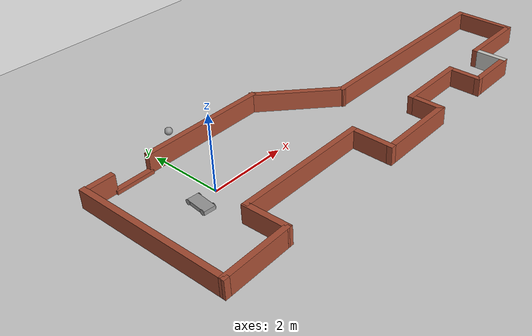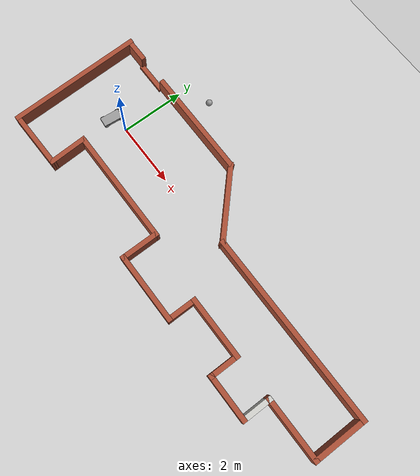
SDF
<sdf version="1.6">
 <world name="default">
  <light name="sun" type="directional">
   <pose>0 0 10 0 -0 0</pose>
   <diffuse>0.8 0.8 0.8 1</diffuse>
   <specular>0.2 0.2 0.2 1</specular>
   <attenuation>
    <range>1000</range>
    <constant>0.9</constant>
    <linear>0.01</linear>
    <quadratic>0.001</quadratic>
   </attenuation>
   <direction>-0.5 0.1 -0.9</direction>
  </light>
  <model name="ground_plane">
   <static>1</static>
   <link name="link">
    <collision name="collision">
     <geometry><plane><normal>0 0 1</normal><size>100 100</size></plane></geometry>
     <surface>
      <contact><collide_bitmask>65535</collide_bitmask></contact>
      <friction><ode><mu>100</mu><mu2>50</mu2></ode></friction>
     </surface>
    </collision>
    <visual name="visual">
     <cast_shadows>0</cast_shadows>
     <geometry><plane><normal>0 0 1</normal><size>100 100</size></plane></geometry>
     <material>
      <script><uri>file://media/materials/scripts/gazebo.material</uri><name>Gazebo/Grey</name></script>
     </material>
    </visual>
   </link>
  </model>
  <gravity>0 0 -9.8</gravity>
  <magnetic_field>6e-06 2.3e-05 -4.2e-05</magnetic_field>
  <atmosphere type="adiabatic"/>
  <physics name="default_physics" default="0" type="ode">
   <max_step_size>0.001</max_step_size>
   <real_time_factor>1</real_time_factor>
   <real_time_update_rate>1000</real_time_update_rate>
  </physics>
  <scene><ambient>0.4 0.4 0.4 1</ambient><background>0.7 0.7 0.7 1</background><shadows>1</shadows></scene>
  <spherical_coordinates>
   <surface_model>EARTH_WGS84</surface_model>
   <latitude_deg>0</latitude_deg>
   <longitude_deg>0</longitude_deg>
   <elevation>0</elevation>
   <heading_deg>0</heading_deg>
  </spherical_coordinates>
  <model name="robot">
   <link name="link_0">
    <inertial>
     <mass>1</mass>
     <inertia>
      <ixx>0.166667</ixx>
      <ixy>0</ixy>
      <ixz>0</ixz>
      <iyy>0.166667</iyy>
      <iyz>0</iyz>
      <izz>0.166667</izz>
     </inertia>
    </inertial>
    <pose>-1e-06 -0.010289 0 0 -0 0</pose>
    <visual name="visual">
     <geometry><box><size>0.3 0.6 0.1</size></box></geometry>
     <material>
      <lighting>1</lighting>
      <script><uri>file://media/materials/scripts/gazebo.material</uri><name>Gazebo/Grey</name></script>
      <shader type="pixel"><normal_map>__default__</normal_map></shader>
      <ambient>0.3 0.3 0.3 1</ambient>
      <diffuse>0.7 0.7 0.7 1</diffuse>
      <specular>0.01 0.01 0.01 1</specular>
      <emissive>0 0 0 1</emissive>
     </material>
    </visual>
    <collision name="collision">
     <geometry><box><size>0.3 0.6 0.1</size></box></geometry>
     <surface>
      <friction>
       <ode><mu>1</mu><mu2>1</mu2><fdir1>0 0 0</fdir1><slip1>0</slip1><slip2>0</slip2></ode>
       <torsional>
        <coefficient>1</coefficient>
        <patch_radius>0</patch_radius>
        <surface_radius>0</surface_radius>
        <use_patch_radius>1</use_patch_radius>
        <ode><slip>0</slip></ode>
       </torsional>
      </friction>
      <bounce><restitution_coefficient>0</restitution_coefficient><threshold>1e+06</threshold></bounce>
      <contact>
       <collide_without_contact>0</collide_without_contact>
       <collide_without_contact_bitmask>1</collide_without_contact_bitmask>
       <collide_bitmask>1</collide_bitmask>
       <ode>
        <soft_cfm>0</soft_cfm>
        <soft_erp>0.2</soft_erp>
        <kp>1e+13</kp>
        <kd>1</kd>
        <max_vel>0.01</max_vel>
        <min_depth>0</min_depth>
       </ode>
       <bullet>
        <split_impulse>1</split_impulse>
        <split_impulse_penetration_threshold>-0.01</split_impulse_penetration_threshold>
        <soft_cfm>0</soft_cfm>
        <soft_erp>0.2</soft_erp>
        <kp>1e+13</kp>
        <kd>1</kd>
       </bullet>
      </contact>
     </surface>
    </collision>
   </link>
   <link name="link_1_clone_0">
    <inertial>
     <mass>1</mass>
     <inertia><ixx>0.145833</ixx><ixy>0</ixy><ixz>0</ixz><iyy>0.145833</iyy><iyz>0</iyz><izz>0.125</izz></inertia>
    </inertial>
    <pose>-0.155011 0.239711 0 1.5707 0 1.5707</pose>
    <visual name="visual">
     <geometry><cylinder><radius>0.07</radius><length>0.01</length></cylinder></geometry>
     <material>
      <lighting>1</lighting>
      <script><uri>file://media/materials/scripts/gazebo.material</uri><name>Gazebo/Grey</name></script>
      <shader type="pixel"><normal_map>__default__</normal_map></shader>
      <ambient>0.3 0.3 0.3 1</ambient>
      <diffuse>0.7 0.7 0.7 1</diffuse>
      <specular>0.01 0.01 0.01 1</specular>
      <emissive>0 0 0 1</emissive>
     </material>
    </visual>
    <collision name="collision">
     <geometry><cylinder><radius>0.07</radius><length>0.01</length></cylinder></geometry>
     <surface>
      <friction>
       <ode><mu>1</mu><mu2>1</mu2><fdir1>0 0 0</fdir1><slip1>0</slip1><slip2>0</slip2></ode>
       <torsional>
        <coefficient>1</coefficient>
        <patch_radius>0</patch_radius>
        <surface_radius>0</surface_radius>
        <use_patch_radius>1</use_patch_radius>
        <ode><slip>0</slip></ode>
       </torsional>
      </friction>
      <bounce><restitution_coefficient>0</restitution_coefficient><threshold>1e+06</threshold></bounce>
      <contact>
       <collide_without_contact>0</collide_without_contact>
       <collide_without_contact_bitmask>1</collide_without_contact_bitmask>
       <collide_bitmask>1</collide_bitmask>
       <ode>
        <soft_cfm>0</soft_cfm>
        <soft_erp>0.2</soft_erp>
        <kp>1e+13</kp>
        <kd>1</kd>
        <max_vel>0.01</max_vel>
        <min_depth>0</min_depth>
       </ode>
       <bullet>
        <split_impulse>1</split_impulse>
        <split_impulse_penetration_threshold>-0.01</split_impulse_penetration_threshold>
        <soft_cfm>0</soft_cfm>
        <soft_erp>0.2</soft_erp>
        <kp>1e+13</kp>
        <kd>1</kd>
       </bullet>
      </contact>
     </surface>
    </collision>
   </link>
   <link name="link_1_clone_0_clone">
    <inertial>
     <mass>1</mass>
     <inertia><ixx>0.145833</ixx><ixy>0</ixy><ixz>0</ixz><iyy>0.145833</iyy><iyz>0</iyz><izz>0.125</izz></inertia>
    </inertial>
    <pose>0.155013 0.251154 0 1.5707 0 1.5707</pose>
    <visual name="visual">
     <geometry><cylinder><radius>0.07</radius><length>0.01</length></cylinder></geometry>
     <material>
      <lighting>1</lighting>
      <script><uri>file://media/materials/scripts/gazebo.material</uri><name>Gazebo/Grey</name></script>
      <shader type="pixel"><normal_map>__default__</normal_map></shader>
      <ambient>0.3 0.3 0.3 1</ambient>
      <diffuse>0.7 0.7 0.7 1</diffuse>
      <specular>0.01 0.01 0.01 1</specular>
      <emissive>0 0 0 1</emissive>
     </material>
    </visual>
    <collision name="collision">
     <geometry><cylinder><radius>0.07</radius><length>0.01</length></cylinder></geometry>
     <surface>
      <friction>
       <ode><mu>1</mu><mu2>1</mu2><fdir1>0 0 0</fdir1><slip1>0</slip1><slip2>0</slip2></ode>
       <torsional>
        <coefficient>1</coefficient>
        <patch_radius>0</patch_radius>
        <surface_radius>0</surface_radius>
        <use_patch_radius>1</use_patch_radius>
        <ode><slip>0</slip></ode>
       </torsional>
      </friction>
      <bounce><restitution_coefficient>0</restitution_coefficient><threshold>1e+06</threshold></bounce>
      <contact>
       <collide_without_contact>0</collide_without_contact>
       <collide_without_contact_bitmask>1</collide_without_contact_bitmask>
       <collide_bitmask>1</collide_bitmask>
       <ode>
        <soft_cfm>0</soft_cfm>
        <soft_erp>0.2</soft_erp>
        <kp>1e+13</kp>
        <kd>1</kd>
        <max_vel>0.01</max_vel>
        <min_depth>0</min_depth>
       </ode>
       <bullet>
        <split_impulse>1</split_impulse>
        <split_impulse_penetration_threshold>-0.01</split_impulse_penetration_threshold>
        <soft_cfm>0</soft_cfm>
        <soft_erp>0.2</soft_erp>
        <kp>1e+13</kp>
        <kd>1</kd>
       </bullet>
      </contact>
     </surface>
    </collision>
   </link>
   <link name="link_1_clone_0_clone_0">
    <inertial>
     <mass>1</mass>
     <inertia><ixx>0.145833</ixx><ixy>0</ixy><ixz>0</ixz><iyy>0.145833</iyy><iyz>0</iyz><izz>0.125</izz></inertia>
    </inertial>
    <pose>0.155013 -0.240288 0 1.5707 0 1.5707</pose>
    <visual name="visual">
     <geometry><cylinder><radius>0.07</radius><length>0.01</length></cylinder></geometry>
     <material>
      <lighting>1</lighting>
      <script><uri>file://media/materials/scripts/gazebo.material</uri><name>Gazebo/Grey</name></script>
      <shader type="pixel"><normal_map>__default__</normal_map></shader>
      <ambient>0.3 0.3 0.3 1</ambient>
      <diffuse>0.7 0.7 0.7 1</diffuse>
      <specular>0.01 0.01 0.01 1</specular>
      <emissive>0 0 0 1</emissive>
     </material>
    </visual>
    <collision name="collision">
     <geometry><cylinder><radius>0.07</radius><length>0.01</length></cylinder></geometry>
     <surface>
      <friction>
       <ode><mu>1</mu><mu2>1</mu2><fdir1>0 0 0</fdir1><slip1>0</slip1><slip2>0</slip2></ode>
       <torsional>
        <coefficient>1</coefficient>
        <patch_radius>0</patch_radius>
        <surface_radius>0</surface_radius>
        <use_patch_radius>1</use_patch_radius>
        <ode><slip>0</slip></ode>
       </torsional>
      </friction>
      <bounce><restitution_coefficient>0</restitution_coefficient><threshold>1e+06</threshold></bounce>
      <contact>
       <collide_without_contact>0</collide_without_contact>
       <collide_without_contact_bitmask>1</collide_without_contact_bitmask>
       <collide_bitmask>1</collide_bitmask>
       <ode>
        <soft_cfm>0</soft_cfm>
        <soft_erp>0.2</soft_erp>
        <kp>1e+13</kp>
        <kd>1</kd>
        <max_vel>0.01</max_vel>
        <min_depth>0</min_depth>
       </ode>
       <bullet>
        <split_impulse>1</split_impulse>
        <split_impulse_penetration_threshold>-0.01</split_impulse_penetration_threshold>
        <soft_cfm>0</soft_cfm>
        <soft_erp>0.2</soft_erp>
        <kp>1e+13</kp>
        <kd>1</kd>
       </bullet>
      </contact>
     </surface>
    </collision>
   </link>
   <link name="link_1_clone_0_clone_0_clone">
    <inertial>
     <mass>1</mass>
     <inertia><ixx>0.145833</ixx><ixy>0</ixy><ixz>0</ixz><iyy>0.145833</iyy><iyz>0</iyz><izz>0.125</izz></inertia>
    </inertial>
    <pose>-0.155014 -0.240288 0 1.5707 0 1.5707</pose>
    <visual name="visual">
     <geometry><cylinder><radius>0.07</radius><length>0.01</length></cylinder></geometry>
     <material>
      <lighting>1</lighting>
      <script><uri>file://media/materials/scripts/gazebo.material</uri><name>Gazebo/Grey</name></script>
      <shader type="pixel"><normal_map>__default__</normal_map></shader>
      <ambient>0.3 0.3 0.3 1</ambient>
      <diffuse>0.7 0.7 0.7 1</diffuse>
      <specular>0.01 0.01 0.01 1</specular>
      <emissive>0 0 0 1</emissive>
     </material>
    </visual>
    <collision name="collision">
     <geometry><cylinder><radius>0.07</radius><length>0.01</length></cylinder></geometry>
     <surface>
      <friction>
       <ode><mu>1</mu><mu2>1</mu2><fdir1>0 0 0</fdir1><slip1>0</slip1><slip2>0</slip2></ode>
       <torsional>
        <coefficient>1</coefficient>
        <patch_radius>0</patch_radius>
        <surface_radius>0</surface_radius>
        <use_patch_radius>1</use_patch_radius>
        <ode><slip>0</slip></ode>
       </torsional>
      </friction>
      <bounce><restitution_coefficient>0</restitution_coefficient><threshold>1e+06</threshold></bounce>
      <contact>
       <collide_without_contact>0</collide_without_contact>
       <collide_without_contact_bitmask>1</collide_without_contact_bitmask>
       <collide_bitmask>1</collide_bitmask>
       <ode>
        <soft_cfm>0</soft_cfm>
        <soft_erp>0.2</soft_erp>
        <kp>1e+13</kp>
        <kd>1</kd>
        <max_vel>0.01</max_vel>
        <min_depth>0</min_depth>
       </ode>
       <bullet>
        <split_impulse>1</split_impulse>
        <split_impulse_penetration_threshold>-0.01</split_impulse_penetration_threshold>
        <soft_cfm>0</soft_cfm>
        <soft_erp>0.2</soft_erp>
        <kp>1e+13</kp>
        <kd>1</kd>
       </bullet>
      </contact>
     </surface>
    </collision>
   </link>
   <joint name="link_0_JOINT_2" type="revolute">
    <parent>link_0</parent>
    <child>link_1_clone_0</child>
    <axis>
     <xyz>0 0 1</xyz>
     <limit>
      <lower>-1.79769e+308</lower>
      <upper>1.79769e+308</upper>
      <effort>-1</effort>
      <velocity>-1</velocity>
     </limit>
     <dynamics>
      <spring_reference>0</spring_reference>
      <spring_stiffness>0</spring_stiffness>
      <damping>0</damping>
     </dynamics>
     <use_parent_model_frame>0</use_parent_model_frame>
    </axis>
    <physics>
     <ode><limit><cfm>0</cfm><erp>0.2</erp></limit><suspension><cfm>0</cfm><erp>0.2</erp></suspension></ode>
    </physics>
   </joint>
   <joint name="link_0_JOINT_3" type="revolute">
    <parent>link_0</parent>
    <child>link_1_clone_0_clone</child>
    <pose>-0.02 0 0 0 -0 0</pose>
    <axis>
     <xyz>0 0 1</xyz>
     <limit>
      <lower>-1.79769e+308</lower>
      <upper>1.79769e+308</upper>
      <effort>-1</effort>
      <velocity>-1</velocity>
     </limit>
     <dynamics>
      <spring_reference>0</spring_reference>
      <spring_stiffness>0</spring_stiffness>
      <damping>0</damping>
     </dynamics>
     <use_parent_model_frame>0</use_parent_model_frame>
    </axis>
    <physics>
     <ode><limit><cfm>0</cfm><erp>0.2</erp></limit><suspension><cfm>0</cfm><erp>0.2</erp></suspension></ode>
    </physics>
   </joint>
   <joint name="link_0_JOINT_4" type="revolute">
    <parent>link_0</parent>
    <child>link_1_clone_0_clone_0</child>
    <axis>
     <xyz>0 0 1</xyz>
     <limit>
      <lower>-1.79769e+308</lower>
      <upper>1.79769e+308</upper>
      <effort>-1</effort>
      <velocity>-1</velocity>
     </limit>
     <dynamics>
      <spring_reference>0</spring_reference>
      <spring_stiffness>0</spring_stiffness>
      <damping>0</damping>
     </dynamics>
     <use_parent_model_frame>0</use_parent_model_frame>
    </axis>
    <physics>
     <ode><limit><cfm>0</cfm><erp>0.2</erp></limit><suspension><cfm>0</cfm><erp>0.2</erp></suspension></ode>
    </physics>
   </joint>
   <joint name="link_0_JOINT_5" type="revolute">
    <parent>link_0</parent>
    <child>link_1_clone_0_clone_0_clone</child>
    <axis>
     <xyz>0 0 1</xyz>
     <limit>
      <lower>-1.79769e+308</lower>
      <upper>1.79769e+308</upper>
      <effort>-1</effort>
      <velocity>-1</velocity>
     </limit>
     <dynamics>
      <spring_reference>0</spring_reference>
      <spring_stiffness>0</spring_stiffness>
      <damping>0</damping>
     </dynamics>
     <use_parent_model_frame>0</use_parent_model_frame>
    </axis>
    <physics>
     <ode><limit><cfm>0</cfm><erp>0.2</erp></limit><suspension><cfm>0</cfm><erp>0.2</erp></suspension></ode>
    </physics>
   </joint>
   <static>0</static>
   <pose>-0.547294 -0.12445 0.069996 -3.14157 1e-06 3.05169</pose>
  </model>
  <model name="mybuilding">
   <pose>4.15485 -0.02566 0 0 -0 0</pose>
   <link name="Wall_0">
    <pose>-3.68927 1.71259 0 0 -0 0</pose>
    <visual name="Wall_0_Visual_0">
     <pose>-2.16475 0 0.25 0 -0 0</pose>
     <geometry><box><size>0.6605 0.15 0.5</size></box></geometry>
     <material>
      <script><uri>file://media/materials/scripts/gazebo.material</uri><name>Gazebo/Bricks</name></script>
      <ambient>1 0.764706 0.305882 1</ambient>
     </material>
     <meta><layer>0</layer></meta>
    </visual>
    <collision name="Wall_0_Collision_0">
     <geometry><box><size>0.6605 0.15 0.5</size></box></geometry>
     <pose>-2.16475 0 0.25 0 -0 0</pose>
    </collision>
    <visual name="Wall_0_Visual_1">
     <pose>0.78025 0 0.25 0 -0 0</pose>
     <geometry><box><size>3.4295 0.15 0.5</size></box></geometry>
     <material>
      <script><uri>file://media/materials/scripts/gazebo.material</uri><name>Gazebo/Bricks</name></script>
      <ambient>1 0.764706 0.305882 1</ambient>
     </material>
     <meta><layer>0</layer></meta>
    </visual>
    <collision name="Wall_0_Collision_1">
     <geometry><box><size>3.4295 0.15 0.5</size></box></geometry>
     <pose>0.78025 0 0.25 0 -0 0</pose>
    </collision>
   </link>
   <link name="Wall_1">
    <collision name="Wall_1_Collision">
     <geometry><box><size>2.45586 0.15 0.5</size></box></geometry>
     <pose>0 0 0.25 0 -0 0</pose>
    </collision>
    <visual name="Wall_1_Visual">
     <pose>0 0 0.25 0 -0 0</pose>
     <geometry><box><size>2.45586 0.15 0.5</size></box></geometry>
     <material>
      <script><uri>file://media/materials/scripts/gazebo.material</uri><name>Gazebo/Bricks</name></script>
      <ambient>1 0.764706 0.305882 1</ambient>
     </material>
     <meta><layer>0</layer></meta>
    </visual>
    <pose>-0.434273 0.917593 0 0 -0 -0.760863</pose>
   </link>
   <link name="Wall_10">
    <pose>0.150727 -2.32741 0 0 -0 3.14159</pose>
    <visual name="Wall_10_Visual_0">
     <pose>0 0 0.25 0 -0 0</pose>
     <geometry><box><size>2.25 0.15 0.5</size></box></geometry>
     <material>
      <script><uri>file://media/materials/scripts/gazebo.material</uri><name>Gazebo/Bricks</name></script>
      <ambient>1 0.764706 0.305882 1</ambient>
     </material>
     <meta><layer>0</layer></meta>
    </visual>
    <collision name="Wall_10_Collision_0">
     <geometry><box><size>2.25 0.15 0.5</size></box></geometry>
     <pose>0 0 0.25 0 -0 0</pose>
    </collision>
   </link>
   <link name="Wall_11">
    <collision name="Wall_11_Collision">
     <geometry><box><size>1.25 0.15 0.5</size></box></geometry>
     <pose>0 0 0.25 0 -0 0</pose>
    </collision>
    <visual name="Wall_11_Visual">
     <pose>0 0 0.25 0 -0 0</pose>
     <geometry><box><size>1.25 0.15 0.5</size></box></geometry>
     <material>
      <script><uri>file://media/materials/scripts/gazebo.material</uri><name>Gazebo/Bricks</name></script>
      <ambient>1 0.764706 0.305882 1</ambient>
     </material>
     <meta><layer>0</layer></meta>
    </visual>
    <pose>-0.899273 -1.77741 0 0 -0 1.5708</pose>
   </link>
   <link name="Wall_12">
    <collision name="Wall_12_Collision">
     <geometry><box><size>3.67065 0.15 0.5</size></box></geometry>
     <pose>0 0 0.25 0 -0 0</pose>
    </collision>
    <visual name="Wall_12_Visual">
     <pose>0 0 0.25 0 -0 0</pose>
     <geometry><box><size>3.67065 0.15 0.5</size></box></geometry>
     <material>
      <script><uri>file://media/materials/scripts/gazebo.material</uri><name>Gazebo/Bricks</name></script>
      <ambient>1 0.764706 0.305882 1</ambient>
     </material>
     <meta><layer>0</layer></meta>
    </visual>
    <pose>-2.6596 -1.22741 0 0 -0 3.14159</pose>
   </link>
   <link name="Wall_13">
    <collision name="Wall_13_Collision">
     <geometry><box><size>1.25 0.15 0.5</size></box></geometry>
     <pose>0 0 0.25 0 -0 0</pose>
    </collision>
    <visual name="Wall_13_Visual">
     <pose>0 0 0.25 0 -0 0</pose>
     <geometry><box><size>1.25 0.15 0.5</size></box></geometry>
     <material>
      <script><uri>file://media/materials/scripts/gazebo.material</uri><name>Gazebo/Bricks</name></script>
      <ambient>1 0.764706 0.305882 1</ambient>
     </material>
     <meta><layer>0</layer></meta>
    </visual>
    <pose>-4.43976 -1.77741 0 0 -0 -1.53474</pose>
   </link>
   <link name="Wall_14">
    <collision name="Wall_14_Collision">
     <geometry><box><size>1.9 0.15 0.5</size></box></geometry>
     <pose>0 0 0.25 0 -0 0</pose>
    </collision>
    <visual name="Wall_14_Visual">
     <pose>0 0 0.25 0 -0 0</pose>
     <geometry><box><size>1.9 0.15 0.5</size></box></geometry>
     <material>
      <script><uri>file://media/materials/scripts/gazebo.material</uri><name>Gazebo/Bricks</name></script>
      <ambient>1 0.764706 0.305882 1</ambient>
     </material>
     <meta><layer>0</layer></meta>
    </visual>
    <pose>-5.29471 -2.34653 0 0 -0 -3.11973</pose>
   </link>
   <link name="Wall_15">
    <collision name="Wall_15_Collision">
     <geometry><box><size>4.25 0.15 0.5</size></box></geometry>
     <pose>0 0 0.25 0 -0 0</pose>
    </collision>
    <visual name="Wall_15_Visual">
     <pose>0 0 0.25 0 -0 0</pose>
     <geometry><box><size>4.25 0.15 0.5</size></box></geometry>
     <material>
      <script><uri>file://media/materials/scripts/gazebo.material</uri><name>Gazebo/Bricks</name></script>
      <ambient>1 0.764706 0.305882 1</ambient>
     </material>
     <meta><layer>0</layer></meta>
    </visual>
    <pose>-6.20939 -0.316535 0 0 -0 1.59026</pose>
   </link>
   <link name="Wall_2">
    <collision name="Wall_2_Collision">
     <geometry><box><size>6 0.15 0.5</size></box></geometry>
     <pose>0 0 0.25 0 -0 0</pose>
    </collision>
    <visual name="Wall_2_Visual">
     <pose>0 0 0.25 0 -0 0</pose>
     <geometry><box><size>6 0.15 0.5</size></box></geometry>
     <material>
      <script><uri>file://media/materials/scripts/gazebo.material</uri><name>Gazebo/Bricks</name></script>
      <ambient>1 0.764706 0.305882 1</ambient>
     </material>
     <meta><layer>0</layer></meta>
    </visual>
    <pose>3.32573 0.122593 0 0 -0 0</pose>
   </link>
   <link name="Wall_3">
    <collision name="Wall_3_Collision">
     <geometry><box><size>1.75 0.15 0.5</size></box></geometry>
     <pose>0 0 0.25 0 -0 0</pose>
    </collision>
    <visual name="Wall_3_Visual">
     <pose>0 0 0.25 0 -0 0</pose>
     <geometry><box><size>1.75 0.15 0.5</size></box></geometry>
     <material>
      <script><uri>file://media/materials/scripts/gazebo.material</uri><name>Gazebo/Bricks</name></script>
      <ambient>1 0.764706 0.305882 1</ambient>
     </material>
     <meta><layer>0</layer></meta>
    </visual>
    <pose>6.25073 -0.677407 0 0 -0 -1.5708</pose>
   </link>
   <link name="Wall_4">
    <collision name="Wall_4_Collision">
     <geometry><box><size>2 0.15 0.5</size></box></geometry>
     <pose>0 0 0.25 0 -0 0</pose>
    </collision>
    <visual name="Wall_4_Visual">
     <pose>0 0 0.25 0 -0 0</pose>
     <geometry><box><size>2 0.15 0.5</size></box></geometry>
     <material>
      <script><uri>file://media/materials/scripts/gazebo.material</uri><name>Gazebo/Bricks</name></script>
      <ambient>1 0.764706 0.305882 1</ambient>
     </material>
     <meta><layer>0</layer></meta>
    </visual>
    <pose>5.32573 -1.47741 0 0 -0 3.14159</pose>
   </link>
   <link name="Wall_5">
    <collision name="Wall_5_Collision">
     <geometry><box><size>1 0.15 0.5</size></box></geometry>
     <pose>0 0 0.25 0 -0 0</pose>
    </collision>
    <visual name="Wall_5_Visual">
     <pose>0 0 0.25 0 -0 0</pose>
     <geometry><box><size>1 0.15 0.5</size></box></geometry>
     <material>
      <script><uri>file://media/materials/scripts/gazebo.material</uri><name>Gazebo/CeilingTiled</name></script>
      <ambient>1 0.764706 0.305882 1</ambient>
     </material>
     <meta><layer>0</layer></meta>
    </visual>
    <pose>4.40073 -1.90241 0 0 -0 -1.5708</pose>
   </link>
   <link name="Wall_6">
    <pose>3.72573 -2.32741 0 0 -0 3.14159</pose>
    <visual name="Wall_6_Visual_0">
     <pose>0 0 0.25 0 -0 0</pose>
     <geometry><box><size>1.5 0.15 0.5</size></box></geometry>
     <material>
      <script><uri>file://media/materials/scripts/gazebo.material</uri><name>Gazebo/Bricks</name></script>
      <ambient>1 0.764706 0.305882 1</ambient>
     </material>
     <meta><layer>0</layer></meta>
    </visual>
    <collision name="Wall_6_Collision_0">
     <geometry><box><size>1.5 0.15 0.5</size></box></geometry>
     <pose>0 0 0.25 0 -0 0</pose>
    </collision>
   </link>
   <link name="Wall_7">
    <collision name="Wall_7_Collision">
     <geometry><box><size>1 0.15 0.5</size></box></geometry>
     <pose>0 0 0.25 0 -0 0</pose>
    </collision>
    <visual name="Wall_7_Visual">
     <pose>0 0 0.25 0 -0 0</pose>
     <geometry><box><size>1 0.15 0.5</size></box></geometry>
     <material>
      <script><uri>file://media/materials/scripts/gazebo.material</uri><name>Gazebo/Bricks</name></script>
      <ambient>1 0.764706 0.305882 1</ambient>
     </material>
     <meta><layer>0</layer></meta>
    </visual>
    <pose>3.05073 -1.90241 0 0 -0 1.5708</pose>
   </link>
   <link name="Wall_8">
    <collision name="Wall_8_Collision">
     <geometry><box><size>2 0.15 0.5</size></box></geometry>
     <pose>0 0 0.25 0 -0 0</pose>
    </collision>
    <visual name="Wall_8_Visual">
     <pose>0 0 0.25 0 -0 0</pose>
     <geometry><box><size>2 0.15 0.5</size></box></geometry>
     <material>
      <script><uri>file://media/materials/scripts/gazebo.material</uri><name>Gazebo/Bricks</name></script>
      <ambient>1 0.764706 0.305882 1</ambient>
     </material>
     <meta><layer>0</layer></meta>
    </visual>
    <pose>2.12573 -1.47741 0 0 -0 3.14159</pose>
   </link>
   <link name="Wall_9">
    <collision name="Wall_9_Collision">
     <geometry><box><size>1 0.15 0.5</size></box></geometry>
     <pose>0 0 0.25 0 -0 0</pose>
    </collision>
    <visual name="Wall_9_Visual">
     <pose>0 0 0.25 0 -0 0</pose>
     <geometry><box><size>1 0.15 0.5</size></box></geometry>
     <material>
      <script><uri>file://media/materials/scripts/gazebo.material</uri><name>Gazebo/Bricks</name></script>
      <ambient>1 0.764706 0.305882 1</ambient>
     </material>
     <meta><layer>0</layer></meta>
    </visual>
    <pose>1.20073 -1.90241 0 0 -0 -1.5708</pose>
   </link>
   <static>1</static>
  </model>
  <model name="my_ball">
   <link name="link_0">
    <inertial>
     <mass>1</mass>
     <inertia><ixx>0.1</ixx><ixy>0</ixy><ixz>0</ixz><iyy>0.1</iyy><iyz>0</iyz><izz>0.1</izz></inertia>
    </inertial>
    <pose>-5e-06 2e-06 0 0 -0 0</pose>
    <visual name="visual">
     <geometry><sphere><radius>0.1</radius></sphere></geometry>
     <material>
      <lighting>1</lighting>
      <script><uri>file://media/materials/scripts/gazebo.material</uri><name>Gazebo/Grey</name></script>
      <shader type="pixel"><normal_map>__default__</normal_map></shader>
      <ambient>1 1 1 1</ambient>
      <diffuse>1 1 1 1</diffuse>
      <specular>1 1 1 1</specular>
      <emissive>1 1 1 1</emissive>
     </material>
    </visual>
    <collision name="collision">
     <geometry><sphere><radius>0.1</radius></sphere></geometry>
     <surface>
      <friction>
       <ode><mu>1</mu><mu2>1</mu2><fdir1>0 0 0</fdir1><slip1>0</slip1><slip2>0</slip2></ode>
       <torsional>
        <coefficient>1</coefficient>
        <patch_radius>0</patch_radius>
        <surface_radius>0</surface_radius>
        <use_patch_radius>1</use_patch_radius>
        <ode><slip>0</slip></ode>
       </torsional>
      </friction>
      <bounce><restitution_coefficient>0</restitution_coefficient><threshold>1e+06</threshold></bounce>
      <contact>
       <collide_without_contact>0</collide_without_contact>
       <collide_without_contact_bitmask>1</collide_without_contact_bitmask>
       <collide_bitmask>1</collide_bitmask>
       <ode>
        <soft_cfm>0</soft_cfm>
        <soft_erp>0.2</soft_erp>
        <kp>1e+13</kp>
        <kd>1</kd>
        <max_vel>0.01</max_vel>
        <min_depth>0</min_depth>
       </ode>
       <bullet>
        <split_impulse>1</split_impulse>
        <split_impulse_penetration_threshold>-0.01</split_impulse_penetration_threshold>
        <soft_cfm>0</soft_cfm>
        <soft_erp>0.2</soft_erp>
        <kp>1e+13</kp>
        <kd>1</kd>
       </bullet>
      </contact>
     </surface>
    </collision>
   </link>
   <static>0</static>
   <pose>0.816881 2.52164 0.1 0 -0 0</pose>
  </model>
  <model name="barrier">
   <pose>-0.923 1.632 0 0 -0 0</pose>
   <link name="Wall_8">
    <collision name="Wall_8_Collision">
     <geometry><box><size>1 0.15 0.1</size></box></geometry>
     <pose>0 0 0.05 0 -0 0</pose>
    </collision>
    <visual name="Wall_8_Visual">
     <pose>0 0 0.05 0 -0 0</pose>
     <geometry><box><size>1 0.15 0.1</size></box></geometry>
     <material>
      <script><uri>file://media/materials/scripts/gazebo.material</uri><name>Gazebo/Bricks</name></script>
      <ambient>1 1 1 1</ambient>
     </material>
     <meta><layer>0</layer></meta>
    </visual>
   </link>
   <static>1</static>
  </model>
 </world>
</sdf>
